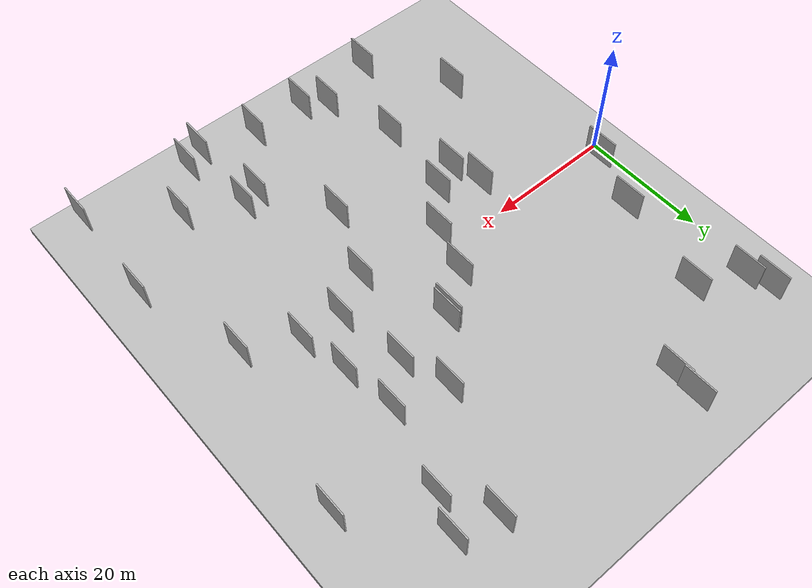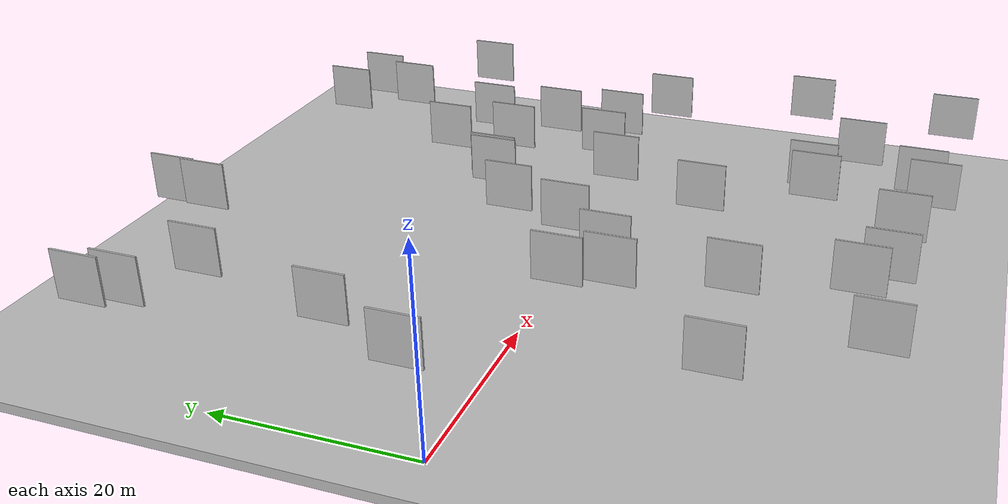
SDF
<?xml version="1.0" encoding="utf-8"?>

<sdf version="1.6">

   <world name="default">

      <gui fullscreen="0">

         <camera name="user_camera">

            <pose>-15 0 4.57585 0 0 0</pose>

            <view_controller>orbit</view_controller>

         </camera>

      </gui>

      <scene>

         <sky>

           <clouds>

             <speed>12</speed>

           </clouds>

         </sky>

         <ambient>0.4 0.4 0.4 1</ambient>

         <background>0.7 0.7 0.7 1</background>

         <shadows>1</shadows>

      </scene>

      <gravity>0 0 -9.8066</gravity>

      <magnetic_field>6e-06 2.3e-05 -4.2e-05</magnetic_field>

      <physics default="0" name="default_physics" type="ode">

         <ode>

            <solver>

               <type>quick</type>

               <iters>10</iters>

               <sor>1.0</sor>

               <use_dynamic_moi_rescaling>0</use_dynamic_moi_rescaling>

            </solver>

            <constraints>

               <cfm>0</cfm>

               <erp>0.2</erp>

               <contact_max_correcting_vel>100</contact_max_correcting_vel>

               <contact_surface_layer>0.001</contact_surface_layer>

            </constraints>

         </ode>

         <max_step_size>0.004</max_step_size>

         <real_time_factor>1</real_time_factor>

         <real_time_update_rate>250</real_time_update_rate>

      </physics>

      <light name="sun" type="directional">

         <cast_shadows>1</cast_shadows>

         <pose>0 0 10 0 0 0</pose>

         <diffuse>0.8 0.8 0.8 1</diffuse>

         <specular>0.2 0.2 0.2 1</specular>

         <attenuation>

            <range>1000</range>

            <constant>0.9</constant>

            <linear>0.01</linear>

            <quadratic>0.001</quadratic>

         </attenuation>

         <direction>-0.5 0.1 -0.9</direction>

      </light>

      <include>

         <name>ground_plane_1</name>

         <uri>model://HANNAS_ground_plane</uri>

         <pose>0 0 0  0 0 0</pose>

      </include>

      <include>

         <name>ground_plane_2</name>

         <uri>model://HANNAS_ground_plane</uri>

         <pose>100 0 0  0 0 0</pose>

      </include>

      <model name="HANNAS_wall_1">

         <static>1</static>

         <pose frame="">57.5017 1.6066 5.0 0.000000 0.000000 1.570796</pose>

         <link name="link">

            <pose frame="">0 0 2.50 0 0 0</pose>

            <collision name="collision">

               <geometry>

                  <box>

                     <size>5.00 0.2 5.00</size>

                  </box>

               </geometry>

               <max_contacts>10</max_contacts>

               <surface>

                  <contact>

                     <ode/>

                  </contact>

                  <bounce/>

                  <friction>

                     <torsional>

                        <ode/>

                     </torsional>

                     <ode/>

                  </friction>

               </surface>

            </collision>

            <visual name="visual">

               <cast_shadows>0</cast_shadows>

               <geometry>

                  <box>

                     <size>5.00 0.2 5.00</size>

                  </box>

               </geometry>

               <material>

                  <script>

                     <uri>model://HANNAS_wall/materials/scripts</uri>

                     <uri>model://HANNAS_wall/materials/textures</uri>

                     <name>vrc/HANNAS_wall</name>

                  </script>

               </material>

            </visual>

            <self_collide>0</self_collide>

            <enable_wind>0</enable_wind>

            <kinematic>0</kinematic>

         </link>

      </model>

      <model name="HANNAS_wall_2">

         <static>1</static>

         <pose frame="">56.0781 8.6717 5.0 0.000000 0.000000 1.570796</pose>

         <link name="link">

            <pose frame="">0 0 2.50 0 0 0</pose>

            <collision name="collision">

               <geometry>

                  <box>

                     <size>5.00 0.2 5.00</size>

                  </box>

               </geometry>

               <max_contacts>10</max_contacts>

               <surface>

                  <contact>

                     <ode/>

                  </contact>

                  <bounce/>

                  <friction>

                     <torsional>

                        <ode/>

                     </torsional>

                     <ode/>

                  </friction>

               </surface>

            </collision>

            <visual name="visual">

               <cast_shadows>0</cast_shadows>

               <geometry>

                  <box>

                     <size>5.00 0.2 5.00</size>

                  </box>

               </geometry>

               <material>

                  <script>

                     <uri>model://HANNAS_wall/materials/scripts</uri>

                     <uri>model://HANNAS_wall/materials/textures</uri>

                     <name>vrc/HANNAS_wall</name>

                  </script>

               </material>

            </visual>

            <self_collide>0</self_collide>

            <enable_wind>0</enable_wind>

            <kinematic>0</kinematic>

         </link>

      </model>

      <model name="HANNAS_wall_3">

         <static>1</static>

         <pose frame="">54.3988 35.3021 5.0 0.000000 0.000000 1.570796</pose>

         <link name="link">

            <pose frame="">0 0 2.50 0 0 0</pose>

            <collision name="collision">

               <geometry>

                  <box>

                     <size>5.00 0.2 5.00</size>

                  </box>

               </geometry>

               <max_contacts>10</max_contacts>

               <surface>

                  <contact>

                     <ode/>

                  </contact>

                  <bounce/>

                  <friction>

                     <torsional>

                        <ode/>

                     </torsional>

                     <ode/>

                  </friction>

               </surface>

            </collision>

            <visual name="visual">

               <cast_shadows>0</cast_shadows>

               <geometry>

                  <box>

                     <size>5.00 0.2 5.00</size>

                  </box>

               </geometry>

               <material>

                  <script>

                     <uri>model://HANNAS_wall/materials/scripts</uri>

                     <uri>model://HANNAS_wall/materials/textures</uri>

                     <name>vrc/HANNAS_wall</name>

                  </script>

               </material>

            </visual>

            <self_collide>0</self_collide>

            <enable_wind>0</enable_wind>

            <kinematic>0</kinematic>

         </link>

      </model>

      <model name="HANNAS_wall_4">

         <static>1</static>

         <pose frame="">47.4897 18.8995 5.0 0.000000 0.000000 1.570796</pose>

         <link name="link">

            <pose frame="">0 0 2.50 0 0 0</pose>

            <collision name="collision">

               <geometry>

                  <box>

                     <size>5.00 0.2 5.00</size>

                  </box>

               </geometry>

               <max_contacts>10</max_contacts>

               <surface>

                  <contact>

                     <ode/>

                  </contact>

                  <bounce/>

                  <friction>

                     <torsional>

                        <ode/>

                     </torsional>

                     <ode/>

                  </friction>

               </surface>

            </collision>

            <visual name="visual">

               <cast_shadows>0</cast_shadows>

               <geometry>

                  <box>

                     <size>5.00 0.2 5.00</size>

                  </box>

               </geometry>

               <material>

                  <script>

                     <uri>model://HANNAS_wall/materials/scripts</uri>

                     <uri>model://HANNAS_wall/materials/textures</uri>

                     <name>vrc/HANNAS_wall</name>

                  </script>

               </material>

            </visual>

            <self_collide>0</self_collide>

            <enable_wind>0</enable_wind>

            <kinematic>0</kinematic>

         </link>

      </model>

      <model name="HANNAS_wall_5">

         <static>1</static>

         <pose frame="">19.8289 -32.2792 5.0 0.000000 0.000000 1.570796</pose>

         <link name="link">

            <pose frame="">0 0 2.50 0 0 0</pose>

            <collision name="collision">

               <geometry>

                  <box>

                     <size>5.00 0.2 5.00</size>

                  </box>

               </geometry>

               <max_contacts>10</max_contacts>

               <surface>

                  <contact>

                     <ode/>

                  </contact>

                  <bounce/>

                  <friction>

                     <torsional>

                        <ode/>

                     </torsional>

                     <ode/>

                  </friction>

               </surface>

            </collision>

            <visual name="visual">

               <cast_shadows>0</cast_shadows>

               <geometry>

                  <box>

                     <size>5.00 0.2 5.00</size>

                  </box>

               </geometry>

               <material>

                  <script>

                     <uri>model://HANNAS_wall/materials/scripts</uri>

                     <uri>model://HANNAS_wall/materials/textures</uri>

                     <name>vrc/HANNAS_wall</name>

                  </script>

               </material>

            </visual>

            <self_collide>0</self_collide>

            <enable_wind>0</enable_wind>

            <kinematic>0</kinematic>

         </link>

      </model>

      <model name="HANNAS_wall_6">

         <static>1</static>

         <pose frame="">54.9334 16.5593 5.0 0.000000 0.000000 1.570796</pose>

         <link name="link">

            <pose frame="">0 0 2.50 0 0 0</pose>

            <collision name="collision">

               <geometry>

                  <box>

                     <size>5.00 0.2 5.00</size>

                  </box>

               </geometry>

               <max_contacts>10</max_contacts>

               <surface>

                  <contact>

                     <ode/>

                  </contact>

                  <bounce/>

                  <friction>

                     <torsional>

                        <ode/>

                     </torsional>

                     <ode/>

                  </friction>

               </surface>

            </collision>

            <visual name="visual">

               <cast_shadows>0</cast_shadows>

               <geometry>

                  <box>

                     <size>5.00 0.2 5.00</size>

                  </box>

               </geometry>

               <material>

                  <script>

                     <uri>model://HANNAS_wall/materials/scripts</uri>

                     <uri>model://HANNAS_wall/materials/textures</uri>

                     <name>vrc/HANNAS_wall</name>

                  </script>

               </material>

            </visual>

            <self_collide>0</self_collide>

            <enable_wind>0</enable_wind>

            <kinematic>0</kinematic>

         </link>

      </model>

      <model name="HANNAS_wall_7">

         <static>1</static>

         <pose frame="">50.0308 -21.8087 5.0 0.000000 0.000000 1.570796</pose>

         <link name="link">

            <pose frame="">0 0 2.50 0 0 0</pose>

            <collision name="collision">

               <geometry>

                  <box>

                     <size>5.00 0.2 5.00</size>

                  </box>

               </geometry>

               <max_contacts>10</max_contacts>

               <surface>

                  <contact>

                     <ode/>

                  </contact>

                  <bounce/>

                  <friction>

                     <torsional>

                        <ode/>

                     </torsional>

                     <ode/>

                  </friction>

               </surface>

            </collision>

            <visual name="visual">

               <cast_shadows>0</cast_shadows>

               <geometry>

                  <box>

                     <size>5.00 0.2 5.00</size>

                  </box>

               </geometry>

               <material>

                  <script>

                     <uri>model://HANNAS_wall/materials/scripts</uri>

                     <uri>model://HANNAS_wall/materials/textures</uri>

                     <name>vrc/HANNAS_wall</name>

                  </script>

               </material>

            </visual>

            <self_collide>0</self_collide>

            <enable_wind>0</enable_wind>

            <kinematic>0</kinematic>

         </link>

      </model>

      <model name="HANNAS_wall_8">

         <static>1</static>

         <pose frame="">64.5347 -2.5638 5.0 0.000000 0.000000 1.570796</pose>

         <link name="link">

            <pose frame="">0 0 2.50 0 0 0</pose>

            <collision name="collision">

               <geometry>

                  <box>

                     <size>5.00 0.2 5.00</size>

                  </box>

               </geometry>

               <max_contacts>10</max_contacts>

               <surface>

                  <contact>

                     <ode/>

                  </contact>

                  <bounce/>

                  <friction>

                     <torsional>

                        <ode/>

                     </torsional>

                     <ode/>

                  </friction>

               </surface>

            </collision>

            <visual name="visual">

               <cast_shadows>0</cast_shadows>

               <geometry>

                  <box>

                     <size>5.00 0.2 5.00</size>

                  </box>

               </geometry>

               <material>

                  <script>

                     <uri>model://HANNAS_wall/materials/scripts</uri>

                     <uri>model://HANNAS_wall/materials/textures</uri>

                     <name>vrc/HANNAS_wall</name>

                  </script>

               </material>

            </visual>

            <self_collide>0</self_collide>

            <enable_wind>0</enable_wind>

            <kinematic>0</kinematic>

         </link>

      </model>

      <model name="HANNAS_wall_9">

         <static>1</static>

         <pose frame="">40.8226 10.9444 5.0 0.000000 0.000000 1.570796</pose>

         <link name="link">

            <pose frame="">0 0 2.50 0 0 0</pose>

            <collision name="collision">

               <geometry>

                  <box>

                     <size>5.00 0.2 5.00</size>

                  </box>

               </geometry>

               <max_contacts>10</max_contacts>

               <surface>

                  <contact>

                     <ode/>

                  </contact>

                  <bounce/>

                  <friction>

                     <torsional>

                        <ode/>

                     </torsional>

                     <ode/>

                  </friction>

               </surface>

            </collision>

            <visual name="visual">

               <cast_shadows>0</cast_shadows>

               <geometry>

                  <box>

                     <size>5.00 0.2 5.00</size>

                  </box>

               </geometry>

               <material>

                  <script>

                     <uri>model://HANNAS_wall/materials/scripts</uri>

                     <uri>model://HANNAS_wall/materials/textures</uri>

                     <name>vrc/HANNAS_wall</name>

                  </script>

               </material>

            </visual>

            <self_collide>0</self_collide>

            <enable_wind>0</enable_wind>

            <kinematic>0</kinematic>

         </link>

      </model>

      <model name="HANNAS_wall_10">

         <static>1</static>

         <pose frame="">49.0571 -34.2443 5.0 0.000000 0.000000 1.570796</pose>

         <link name="link">

            <pose frame="">0 0 2.50 0 0 0</pose>

            <collision name="collision">

               <geometry>

                  <box>

                     <size>5.00 0.2 5.00</size>

                  </box>

               </geometry>

               <max_contacts>10</max_contacts>

               <surface>

                  <contact>

                     <ode/>

                  </contact>

                  <bounce/>

                  <friction>

                     <torsional>

                        <ode/>

                     </torsional>

                     <ode/>

                  </friction>

               </surface>

            </collision>

            <visual name="visual">

               <cast_shadows>0</cast_shadows>

               <geometry>

                  <box>

                     <size>5.00 0.2 5.00</size>

                  </box>

               </geometry>

               <material>

                  <script>

                     <uri>model://HANNAS_wall/materials/scripts</uri>

                     <uri>model://HANNAS_wall/materials/textures</uri>

                     <name>vrc/HANNAS_wall</name>

                  </script>

               </material>

            </visual>

            <self_collide>0</self_collide>

            <enable_wind>0</enable_wind>

            <kinematic>0</kinematic>

         </link>

      </model>

      <model name="HANNAS_wall_11">

         <static>1</static>

         <pose frame="">68.6575 -35.0618 5.0 0.000000 0.000000 1.570796</pose>

         <link name="link">

            <pose frame="">0 0 2.50 0 0 0</pose>

            <collision name="collision">

               <geometry>

                  <box>

                     <size>5.00 0.2 5.00</size>

                  </box>

               </geometry>

               <max_contacts>10</max_contacts>

               <surface>

                  <contact>

                     <ode/>

                  </contact>

                  <bounce/>

                  <friction>

                     <torsional>

                        <ode/>

                     </torsional>

                     <ode/>

                  </friction>

               </surface>

            </collision>

            <visual name="visual">

               <cast_shadows>0</cast_shadows>

               <geometry>

                  <box>

                     <size>5.00 0.2 5.00</size>

                  </box>

               </geometry>

               <material>

                  <script>

                     <uri>model://HANNAS_wall/materials/scripts</uri>

                     <uri>model://HANNAS_wall/materials/textures</uri>

                     <name>vrc/HANNAS_wall</name>

                  </script>

               </material>

            </visual>

            <self_collide>0</self_collide>

            <enable_wind>0</enable_wind>

            <kinematic>0</kinematic>

         </link>

      </model>

      <model name="HANNAS_wall_12">

         <static>1</static>

         <pose frame="">21.8648 -3.1618 5.0 0.000000 0.000000 1.570796</pose>

         <link name="link">

            <pose frame="">0 0 2.50 0 0 0</pose>

            <collision name="collision">

               <geometry>

                  <box>

                     <size>5.00 0.2 5.00</size>

                  </box>

               </geometry>

               <max_contacts>10</max_contacts>

               <surface>

                  <contact>

                     <ode/>

                  </contact>

                  <bounce/>

                  <friction>

                     <torsional>

                        <ode/>

                     </torsional>

                     <ode/>

                  </friction>

               </surface>

            </collision>

            <visual name="visual">

               <cast_shadows>0</cast_shadows>

               <geometry>

                  <box>

                     <size>5.00 0.2 5.00</size>

                  </box>

               </geometry>

               <material>

                  <script>

                     <uri>model://HANNAS_wall/materials/scripts</uri>

                     <uri>model://HANNAS_wall/materials/textures</uri>

                     <name>vrc/HANNAS_wall</name>

                  </script>

               </material>

            </visual>

            <self_collide>0</self_collide>

            <enable_wind>0</enable_wind>

            <kinematic>0</kinematic>

         </link>

      </model>

      <model name="HANNAS_wall_13">

         <static>1</static>

         <pose frame="">57.7972 -25.9357 5.0 0.000000 0.000000 1.570796</pose>

         <link name="link">

            <pose frame="">0 0 2.50 0 0 0</pose>

            <collision name="collision">

               <geometry>

                  <box>

                     <size>5.00 0.2 5.00</size>

                  </box>

               </geometry>

               <max_contacts>10</max_contacts>

               <surface>

                  <contact>

                     <ode/>

                  </contact>

                  <bounce/>

                  <friction>

                     <torsional>

                        <ode/>

                     </torsional>

                     <ode/>

                  </friction>

               </surface>

            </collision>

            <visual name="visual">

               <cast_shadows>0</cast_shadows>

               <geometry>

                  <box>

                     <size>5.00 0.2 5.00</size>

                  </box>

               </geometry>

               <material>

                  <script>

                     <uri>model://HANNAS_wall/materials/scripts</uri>

                     <uri>model://HANNAS_wall/materials/textures</uri>

                     <name>vrc/HANNAS_wall</name>

                  </script>

               </material>

            </visual>

            <self_collide>0</self_collide>

            <enable_wind>0</enable_wind>

            <kinematic>0</kinematic>

         </link>

      </model>

      <model name="HANNAS_wall_14">

         <static>1</static>

         <pose frame="">4.7463 35.4220 5.0 0.000000 0.000000 1.570796</pose>

         <link name="link">

            <pose frame="">0 0 2.50 0 0 0</pose>

            <collision name="collision">

               <geometry>

                  <box>

                     <size>5.00 0.2 5.00</size>

                  </box>

               </geometry>

               <max_contacts>10</max_contacts>

               <surface>

                  <contact>

                     <ode/>

                  </contact>

                  <bounce/>

                  <friction>

                     <torsional>

                        <ode/>

                     </torsional>

                     <ode/>

                  </friction>

               </surface>

            </collision>

            <visual name="visual">

               <cast_shadows>0</cast_shadows>

               <geometry>

                  <box>

                     <size>5.00 0.2 5.00</size>

                  </box>

               </geometry>

               <material>

                  <script>

                     <uri>model://HANNAS_wall/materials/scripts</uri>

                     <uri>model://HANNAS_wall/materials/textures</uri>

                     <name>vrc/HANNAS_wall</name>

                  </script>

               </material>

            </visual>

            <self_collide>0</self_collide>

            <enable_wind>0</enable_wind>

            <kinematic>0</kinematic>

         </link>

      </model>

      <model name="HANNAS_wall_15">

         <static>1</static>

         <pose frame="">29.0141 -29.4306 5.0 0.000000 0.000000 1.570796</pose>

         <link name="link">

            <pose frame="">0 0 2.50 0 0 0</pose>

            <collision name="collision">

               <geometry>

                  <box>

                     <size>5.00 0.2 5.00</size>

                  </box>

               </geometry>

               <max_contacts>10</max_contacts>

               <surface>

                  <contact>

                     <ode/>

                  </contact>

                  <bounce/>

                  <friction>

                     <torsional>

                        <ode/>

                     </torsional>

                     <ode/>

                  </friction>

               </surface>

            </collision>

            <visual name="visual">

               <cast_shadows>0</cast_shadows>

               <geometry>

                  <box>

                     <size>5.00 0.2 5.00</size>

                  </box>

               </geometry>

               <material>

                  <script>

                     <uri>model://HANNAS_wall/materials/scripts</uri>

                     <uri>model://HANNAS_wall/materials/textures</uri>

                     <name>vrc/HANNAS_wall</name>

                  </script>

               </material>

            </visual>

            <self_collide>0</self_collide>

            <enable_wind>0</enable_wind>

            <kinematic>0</kinematic>

         </link>

      </model>

      <model name="HANNAS_wall_16">

         <static>1</static>

         <pose frame="">58.2957 28.6387 5.0 0.000000 0.000000 1.570796</pose>

         <link name="link">

            <pose frame="">0 0 2.50 0 0 0</pose>

            <collision name="collision">

               <geometry>

                  <box>

                     <size>5.00 0.2 5.00</size>

                  </box>

               </geometry>

               <max_contacts>10</max_contacts>

               <surface>

                  <contact>

                     <ode/>

                  </contact>

                  <bounce/>

                  <friction>

                     <torsional>

                        <ode/>

                     </torsional>

                     <ode/>

                  </friction>

               </surface>

            </collision>

            <visual name="visual">

               <cast_shadows>0</cast_shadows>

               <geometry>

                  <box>

                     <size>5.00 0.2 5.00</size>

                  </box>

               </geometry>

               <material>

                  <script>

                     <uri>model://HANNAS_wall/materials/scripts</uri>

                     <uri>model://HANNAS_wall/materials/textures</uri>

                     <name>vrc/HANNAS_wall</name>

                  </script>

               </material>

            </visual>

            <self_collide>0</self_collide>

            <enable_wind>0</enable_wind>

            <kinematic>0</kinematic>

         </link>

      </model>

      <model name="HANNAS_wall_17">

         <static>1</static>

         <pose frame="">49.7387 12.1019 5.0 0.000000 0.000000 1.570796</pose>

         <link name="link">

            <pose frame="">0 0 2.50 0 0 0</pose>

            <collision name="collision">

               <geometry>

                  <box>

                     <size>5.00 0.2 5.00</size>

                  </box>

               </geometry>

               <max_contacts>10</max_contacts>

               <surface>

                  <contact>

                     <ode/>

                  </contact>

                  <bounce/>

                  <friction>

                     <torsional>

                        <ode/>

                     </torsional>

                     <ode/>

                  </friction>

               </surface>

            </collision>

            <visual name="visual">

               <cast_shadows>0</cast_shadows>

               <geometry>

                  <box>

                     <size>5.00 0.2 5.00</size>

                  </box>

               </geometry>

               <material>

                  <script>

                     <uri>model://HANNAS_wall/materials/scripts</uri>

                     <uri>model://HANNAS_wall/materials/textures</uri>

                     <name>vrc/HANNAS_wall</name>

                  </script>

               </material>

            </visual>

            <self_collide>0</self_collide>

            <enable_wind>0</enable_wind>

            <kinematic>0</kinematic>

         </link>

      </model>

      <model name="HANNAS_wall_18">

         <static>1</static>

         <pose frame="">32.2640 -0.2797 5.0 0.000000 0.000000 1.570796</pose>

         <link name="link">

            <pose frame="">0 0 2.50 0 0 0</pose>

            <collision name="collision">

               <geometry>

                  <box>

                     <size>5.00 0.2 5.00</size>

                  </box>

               </geometry>

               <max_contacts>10</max_contacts>

               <surface>

                  <contact>

                     <ode/>

                  </contact>

                  <bounce/>

                  <friction>

                     <torsional>

                        <ode/>

                     </torsional>

                     <ode/>

                  </friction>

               </surface>

            </collision>

            <visual name="visual">

               <cast_shadows>0</cast_shadows>

               <geometry>

                  <box>

                     <size>5.00 0.2 5.00</size>

                  </box>

               </geometry>

               <material>

                  <script>

                     <uri>model://HANNAS_wall/materials/scripts</uri>

                     <uri>model://HANNAS_wall/materials/textures</uri>

                     <name>vrc/HANNAS_wall</name>

                  </script>

               </material>

            </visual>

            <self_collide>0</self_collide>

            <enable_wind>0</enable_wind>

            <kinematic>0</kinematic>

         </link>

      </model>

      <model name="HANNAS_wall_19">

         <static>1</static>

         <pose frame="">34.6848 6.6577 5.0 0.000000 0.000000 1.570796</pose>

         <link name="link">

            <pose frame="">0 0 2.50 0 0 0</pose>

            <collision name="collision">

               <geometry>

                  <box>

                     <size>5.00 0.2 5.00</size>

                  </box>

               </geometry>

               <max_contacts>10</max_contacts>

               <surface>

                  <contact>

                     <ode/>

                  </contact>

                  <bounce/>

                  <friction>

                     <torsional>

                        <ode/>

                     </torsional>

                     <ode/>

                  </friction>

               </surface>

            </collision>

            <visual name="visual">

               <cast_shadows>0</cast_shadows>

               <geometry>

                  <box>

                     <size>5.00 0.2 5.00</size>

                  </box>

               </geometry>

               <material>

                  <script>

                     <uri>model://HANNAS_wall/materials/scripts</uri>

                     <uri>model://HANNAS_wall/materials/textures</uri>

                     <name>vrc/HANNAS_wall</name>

                  </script>

               </material>

            </visual>

            <self_collide>0</self_collide>

            <enable_wind>0</enable_wind>

            <kinematic>0</kinematic>

         </link>

      </model>

      <model name="HANNAS_wall_20">

         <static>1</static>

         <pose frame="">51.3331 1.8923 5.0 0.000000 0.000000 1.570796</pose>

         <link name="link">

            <pose frame="">0 0 2.50 0 0 0</pose>

            <collision name="collision">

               <geometry>

                  <box>

                     <size>5.00 0.2 5.00</size>

                  </box>

               </geometry>

               <max_contacts>10</max_contacts>

               <surface>

                  <contact>

                     <ode/>

                  </contact>

                  <bounce/>

                  <friction>

                     <torsional>

                        <ode/>

                     </torsional>

                     <ode/>

                  </friction>

               </surface>

            </collision>

            <visual name="visual">

               <cast_shadows>0</cast_shadows>

               <geometry>

                  <box>

                     <size>5.00 0.2 5.00</size>

                  </box>

               </geometry>

               <material>

                  <script>

                     <uri>model://HANNAS_wall/materials/scripts</uri>

                     <uri>model://HANNAS_wall/materials/textures</uri>

                     <name>vrc/HANNAS_wall</name>

                  </script>

               </material>

            </visual>

            <self_collide>0</self_collide>

            <enable_wind>0</enable_wind>

            <kinematic>0</kinematic>

         </link>

      </model>

      <model name="HANNAS_wall_21">

         <static>1</static>

         <pose frame="">23.2405 -7.7976 5.0 0.000000 0.000000 1.570796</pose>

         <link name="link">

            <pose frame="">0 0 2.50 0 0 0</pose>

            <collision name="collision">

               <geometry>

                  <box>

                     <size>5.00 0.2 5.00</size>

                  </box>

               </geometry>

               <max_contacts>10</max_contacts>

               <surface>

                  <contact>

                     <ode/>

                  </contact>

                  <bounce/>

                  <friction>

                     <torsional>

                        <ode/>

                     </torsional>

                     <ode/>

                  </friction>

               </surface>

            </collision>

            <visual name="visual">

               <cast_shadows>0</cast_shadows>

               <geometry>

                  <box>

                     <size>5.00 0.2 5.00</size>

                  </box>

               </geometry>

               <material>

                  <script>

                     <uri>model://HANNAS_wall/materials/scripts</uri>

                     <uri>model://HANNAS_wall/materials/textures</uri>

                     <name>vrc/HANNAS_wall</name>

                  </script>

               </material>

            </visual>

            <self_collide>0</self_collide>

            <enable_wind>0</enable_wind>

            <kinematic>0</kinematic>

         </link>

      </model>

      <model name="HANNAS_wall_22">

         <static>1</static>

         <pose frame="">25.7096 -18.5956 5.0 0.000000 0.000000 1.570796</pose>

         <link name="link">

            <pose frame="">0 0 2.50 0 0 0</pose>

            <collision name="collision">

               <geometry>

                  <box>

                     <size>5.00 0.2 5.00</size>

                  </box>

               </geometry>

               <max_contacts>10</max_contacts>

               <surface>

                  <contact>

                     <ode/>

                  </contact>

                  <bounce/>

                  <friction>

                     <torsional>

                        <ode/>

                     </torsional>

                     <ode/>

                  </friction>

               </surface>

            </collision>

            <visual name="visual">

               <cast_shadows>0</cast_shadows>

               <geometry>

                  <box>

                     <size>5.00 0.2 5.00</size>

                  </box>

               </geometry>

               <material>

                  <script>

                     <uri>model://HANNAS_wall/materials/scripts</uri>

                     <uri>model://HANNAS_wall/materials/textures</uri>

                     <name>vrc/HANNAS_wall</name>

                  </script>

               </material>

            </visual>

            <self_collide>0</self_collide>

            <enable_wind>0</enable_wind>

            <kinematic>0</kinematic>

         </link>

      </model>

      <model name="HANNAS_wall_23">

         <static>1</static>

         <pose frame="">32.4021 -31.7320 5.0 0.000000 0.000000 1.570796</pose>

         <link name="link">

            <pose frame="">0 0 2.50 0 0 0</pose>

            <collision name="collision">

               <geometry>

                  <box>

                     <size>5.00 0.2 5.00</size>

                  </box>

               </geometry>

               <max_contacts>10</max_contacts>

               <surface>

                  <contact>

                     <ode/>

                  </contact>

                  <bounce/>

                  <friction>

                     <torsional>

                        <ode/>

                     </torsional>

                     <ode/>

                  </friction>

               </surface>

            </collision>

            <visual name="visual">

               <cast_shadows>0</cast_shadows>

               <geometry>

                  <box>

                     <size>5.00 0.2 5.00</size>

                  </box>

               </geometry>

               <material>

                  <script>

                     <uri>model://HANNAS_wall/materials/scripts</uri>

                     <uri>model://HANNAS_wall/materials/textures</uri>

                     <name>vrc/HANNAS_wall</name>

                  </script>

               </material>

            </visual>

            <self_collide>0</self_collide>

            <enable_wind>0</enable_wind>

            <kinematic>0</kinematic>

         </link>

      </model>

      <model name="HANNAS_wall_24">

         <static>1</static>

         <pose frame="">12.6926 28.8400 5.0 0.000000 0.000000 1.570796</pose>

         <link name="link">

            <pose frame="">0 0 2.50 0 0 0</pose>

            <collision name="collision">

               <geometry>

                  <box>

                     <size>5.00 0.2 5.00</size>

                  </box>

               </geometry>

               <max_contacts>10</max_contacts>

               <surface>

                  <contact>

                     <ode/>

                  </contact>

                  <bounce/>

                  <friction>

                     <torsional>

                        <ode/>

                     </torsional>

                     <ode/>

                  </friction>

               </surface>

            </collision>

            <visual name="visual">

               <cast_shadows>0</cast_shadows>

               <geometry>

                  <box>

                     <size>5.00 0.2 5.00</size>

                  </box>

               </geometry>

               <material>

                  <script>

                     <uri>model://HANNAS_wall/materials/scripts</uri>

                     <uri>model://HANNAS_wall/materials/textures</uri>

                     <name>vrc/HANNAS_wall</name>

                  </script>

               </material>

            </visual>

            <self_collide>0</self_collide>

            <enable_wind>0</enable_wind>

            <kinematic>0</kinematic>

         </link>

      </model>

      <model name="HANNAS_wall_25">

         <static>1</static>

         <pose frame="">40.8374 -31.9557 5.0 0.000000 0.000000 1.570796</pose>

         <link name="link">

            <pose frame="">0 0 2.50 0 0 0</pose>

            <collision name="collision">

               <geometry>

                  <box>

                     <size>5.00 0.2 5.00</size>

                  </box>

               </geometry>

               <max_contacts>10</max_contacts>

               <surface>

                  <contact>

                     <ode/>

                  </contact>

                  <bounce/>

                  <friction>

                     <torsional>

                        <ode/>

                     </torsional>

                     <ode/>

                  </friction>

               </surface>

            </collision>

            <visual name="visual">

               <cast_shadows>0</cast_shadows>

               <geometry>

                  <box>

                     <size>5.00 0.2 5.00</size>

                  </box>

               </geometry>

               <material>

                  <script>

                     <uri>model://HANNAS_wall/materials/scripts</uri>

                     <uri>model://HANNAS_wall/materials/textures</uri>

                     <name>vrc/HANNAS_wall</name>

                  </script>

               </material>

            </visual>

            <self_collide>0</self_collide>

            <enable_wind>0</enable_wind>

            <kinematic>0</kinematic>

         </link>

      </model>

      <model name="HANNAS_wall_26">

         <static>1</static>

         <pose frame="">45.2582 -1.4770 5.0 0.000000 0.000000 1.570796</pose>

         <link name="link">

            <pose frame="">0 0 2.50 0 0 0</pose>

            <collision name="collision">

               <geometry>

                  <box>

                     <size>5.00 0.2 5.00</size>

                  </box>

               </geometry>

               <max_contacts>10</max_contacts>

               <surface>

                  <contact>

                     <ode/>

                  </contact>

                  <bounce/>

                  <friction>

                     <torsional>

                        <ode/>

                     </torsional>

                     <ode/>

                  </friction>

               </surface>

            </collision>

            <visual name="visual">

               <cast_shadows>0</cast_shadows>

               <geometry>

                  <box>

                     <size>5.00 0.2 5.00</size>

                  </box>

               </geometry>

               <material>

                  <script>

                     <uri>model://HANNAS_wall/materials/scripts</uri>

                     <uri>model://HANNAS_wall/materials/textures</uri>

                     <name>vrc/HANNAS_wall</name>

                  </script>

               </material>

            </visual>

            <self_collide>0</self_collide>

            <enable_wind>0</enable_wind>

            <kinematic>0</kinematic>

         </link>

      </model>

      <model name="HANNAS_wall_27">

         <static>1</static>

         <pose frame="">60.2862 33.7061 5.0 0.000000 0.000000 1.570796</pose>

         <link name="link">

            <pose frame="">0 0 2.50 0 0 0</pose>

            <collision name="collision">

               <geometry>

                  <box>

                     <size>5.00 0.2 5.00</size>

                  </box>

               </geometry>

               <max_contacts>10</max_contacts>

               <surface>

                  <contact>

                     <ode/>

                  </contact>

                  <bounce/>

                  <friction>

                     <torsional>

                        <ode/>

                     </torsional>

                     <ode/>

                  </friction>

               </surface>

            </collision>

            <visual name="visual">

               <cast_shadows>0</cast_shadows>

               <geometry>

                  <box>

                     <size>5.00 0.2 5.00</size>

                  </box>

               </geometry>

               <material>

                  <script>

                     <uri>model://HANNAS_wall/materials/scripts</uri>

                     <uri>model://HANNAS_wall/materials/textures</uri>

                     <name>vrc/HANNAS_wall</name>

                  </script>

               </material>

            </visual>

            <self_collide>0</self_collide>

            <enable_wind>0</enable_wind>

            <kinematic>0</kinematic>

         </link>

      </model>

      <model name="HANNAS_wall_28">

         <static>1</static>

         <pose frame="">24.8145 36.2063 5.0 0.000000 0.000000 1.570796</pose>

         <link name="link">

            <pose frame="">0 0 2.50 0 0 0</pose>

            <collision name="collision">

               <geometry>

                  <box>

                     <size>5.00 0.2 5.00</size>

                  </box>

               </geometry>

               <max_contacts>10</max_contacts>

               <surface>

                  <contact>

                     <ode/>

                  </contact>

                  <bounce/>

                  <friction>

                     <torsional>

                        <ode/>

                     </torsional>

                     <ode/>

                  </friction>

               </surface>

            </collision>

            <visual name="visual">

               <cast_shadows>0</cast_shadows>

               <geometry>

                  <box>

                     <size>5.00 0.2 5.00</size>

                  </box>

               </geometry>

               <material>

                  <script>

                     <uri>model://HANNAS_wall/materials/scripts</uri>

                     <uri>model://HANNAS_wall/materials/textures</uri>

                     <name>vrc/HANNAS_wall</name>

                  </script>

               </material>

            </visual>

            <self_collide>0</self_collide>

            <enable_wind>0</enable_wind>

            <kinematic>0</kinematic>

         </link>

      </model>

      <model name="HANNAS_wall_29">

         <static>1</static>

         <pose frame="">52.1399 -32.8068 5.0 0.000000 0.000000 1.570796</pose>

         <link name="link">

            <pose frame="">0 0 2.50 0 0 0</pose>

            <collision name="collision">

               <geometry>

                  <box>

                     <size>5.00 0.2 5.00</size>

                  </box>

               </geometry>

               <max_contacts>10</max_contacts>

               <surface>

                  <contact>

                     <ode/>

                  </contact>

                  <bounce/>

                  <friction>

                     <torsional>

                        <ode/>

                     </torsional>

                     <ode/>

                  </friction>

               </surface>

            </collision>

            <visual name="visual">

               <cast_shadows>0</cast_shadows>

               <geometry>

                  <box>

                     <size>5.00 0.2 5.00</size>

                  </box>

               </geometry>

               <material>

                  <script>

                     <uri>model://HANNAS_wall/materials/scripts</uri>

                     <uri>model://HANNAS_wall/materials/textures</uri>

                     <name>vrc/HANNAS_wall</name>

                  </script>

               </material>

            </visual>

            <self_collide>0</self_collide>

            <enable_wind>0</enable_wind>

            <kinematic>0</kinematic>

         </link>

      </model>

      <model name="HANNAS_wall_30">

         <static>1</static>

         <pose frame="">27.3456 -6.0226 5.0 0.000000 0.000000 1.570796</pose>

         <link name="link">

            <pose frame="">0 0 2.50 0 0 0</pose>

            <collision name="collision">

               <geometry>

                  <box>

                     <size>5.00 0.2 5.00</size>

                  </box>

               </geometry>

               <max_contacts>10</max_contacts>

               <surface>

                  <contact>

                     <ode/>

                  </contact>

                  <bounce/>

                  <friction>

                     <torsional>

                        <ode/>

                     </torsional>

                     <ode/>

                  </friction>

               </surface>

            </collision>

            <visual name="visual">

               <cast_shadows>0</cast_shadows>

               <geometry>

                  <box>

                     <size>5.00 0.2 5.00</size>

                  </box>

               </geometry>

               <material>

                  <script>

                     <uri>model://HANNAS_wall/materials/scripts</uri>

                     <uri>model://HANNAS_wall/materials/textures</uri>

                     <name>vrc/HANNAS_wall</name>

                  </script>

               </material>

            </visual>

            <self_collide>0</self_collide>

            <enable_wind>0</enable_wind>

            <kinematic>0</kinematic>

         </link>

      </model>

      <model name="HANNAS_wall_31">

         <static>1</static>

         <pose frame="">69.0464 22.4120 5.0 0.000000 0.000000 1.570796</pose>

         <link name="link">

            <pose frame="">0 0 2.50 0 0 0</pose>

            <collision name="collision">

               <geometry>

                  <box>

                     <size>5.00 0.2 5.00</size>

                  </box>

               </geometry>

               <max_contacts>10</max_contacts>

               <surface>

                  <contact>

                     <ode/>

                  </contact>

                  <bounce/>

                  <friction>

                     <torsional>

                        <ode/>

                     </torsional>

                     <ode/>

                  </friction>

               </surface>

            </collision>

            <visual name="visual">

               <cast_shadows>0</cast_shadows>

               <geometry>

                  <box>

                     <size>5.00 0.2 5.00</size>

                  </box>

               </geometry>

               <material>

                  <script>

                     <uri>model://HANNAS_wall/materials/scripts</uri>

                     <uri>model://HANNAS_wall/materials/textures</uri>

                     <name>vrc/HANNAS_wall</name>

                  </script>

               </material>

            </visual>

            <self_collide>0</self_collide>

            <enable_wind>0</enable_wind>

            <kinematic>0</kinematic>

         </link>

      </model>

      <model name="HANNAS_wall_32">

         <static>1</static>

         <pose frame="">40.2112 10.6199 5.0 0.000000 0.000000 1.570796</pose>

         <link name="link">

            <pose frame="">0 0 2.50 0 0 0</pose>

            <collision name="collision">

               <geometry>

                  <box>

                     <size>5.00 0.2 5.00</size>

                  </box>

               </geometry>

               <max_contacts>10</max_contacts>

               <surface>

                  <contact>

                     <ode/>

                  </contact>

                  <bounce/>

                  <friction>

                     <torsional>

                        <ode/>

                     </torsional>

                     <ode/>

                  </friction>

               </surface>

            </collision>

            <visual name="visual">

               <cast_shadows>0</cast_shadows>

               <geometry>

                  <box>

                     <size>5.00 0.2 5.00</size>

                  </box>

               </geometry>

               <material>

                  <script>

                     <uri>model://HANNAS_wall/materials/scripts</uri>

                     <uri>model://HANNAS_wall/materials/textures</uri>

                     <name>vrc/HANNAS_wall</name>

                  </script>

               </material>

            </visual>

            <self_collide>0</self_collide>

            <enable_wind>0</enable_wind>

            <kinematic>0</kinematic>

         </link>

      </model>

      <model name="HANNAS_wall_33">

         <static>1</static>

         <pose frame="">9.0679 13.6717 5.0 0.000000 0.000000 1.570796</pose>

         <link name="link">

            <pose frame="">0 0 2.50 0 0 0</pose>

            <collision name="collision">

               <geometry>

                  <box>

                     <size>5.00 0.2 5.00</size>

                  </box>

               </geometry>

               <max_contacts>10</max_contacts>

               <surface>

                  <contact>

                     <ode/>

                  </contact>

                  <bounce/>

                  <friction>

                     <torsional>

                        <ode/>

                     </torsional>

                     <ode/>

                  </friction>

               </surface>

            </collision>

            <visual name="visual">

               <cast_shadows>0</cast_shadows>

               <geometry>

                  <box>

                     <size>5.00 0.2 5.00</size>

                  </box>

               </geometry>

               <material>

                  <script>

                     <uri>model://HANNAS_wall/materials/scripts</uri>

                     <uri>model://HANNAS_wall/materials/textures</uri>

                     <name>vrc/HANNAS_wall</name>

                  </script>

               </material>

            </visual>

            <self_collide>0</self_collide>

            <enable_wind>0</enable_wind>

            <kinematic>0</kinematic>

         </link>

      </model>

      <model name="HANNAS_wall_34">

         <static>1</static>

         <pose frame="">5.0622 4.6306 5.0 0.000000 0.000000 1.570796</pose>

         <link name="link">

            <pose frame="">0 0 2.50 0 0 0</pose>

            <collision name="collision">

               <geometry>

                  <box>

                     <size>5.00 0.2 5.00</size>

                  </box>

               </geometry>

               <max_contacts>10</max_contacts>

               <surface>

                  <contact>

                     <ode/>

                  </contact>

                  <bounce/>

                  <friction>

                     <torsional>

                        <ode/>

                     </torsional>

                     <ode/>

                  </friction>

               </surface>

            </collision>

            <visual name="visual">

               <cast_shadows>0</cast_shadows>

               <geometry>

                  <box>

                     <size>5.00 0.2 5.00</size>

                  </box>

               </geometry>

               <material>

                  <script>

                     <uri>model://HANNAS_wall/materials/scripts</uri>

                     <uri>model://HANNAS_wall/materials/textures</uri>

                     <name>vrc/HANNAS_wall</name>

                  </script>

               </material>

            </visual>

            <self_collide>0</self_collide>

            <enable_wind>0</enable_wind>

            <kinematic>0</kinematic>

         </link>

      </model>

      <model name="HANNAS_wall_35">

         <static>1</static>

         <pose frame="">69.3849 -18.7714 5.0 0.000000 0.000000 1.570796</pose>

         <link name="link">

            <pose frame="">0 0 2.50 0 0 0</pose>

            <collision name="collision">

               <geometry>

                  <box>

                     <size>5.00 0.2 5.00</size>

                  </box>

               </geometry>

               <max_contacts>10</max_contacts>

               <surface>

                  <contact>

                     <ode/>

                  </contact>

                  <bounce/>

                  <friction>

                     <torsional>

                        <ode/>

                     </torsional>

                     <ode/>

                  </friction>

               </surface>

            </collision>

            <visual name="visual">

               <cast_shadows>0</cast_shadows>

               <geometry>

                  <box>

                     <size>5.00 0.2 5.00</size>

                  </box>

               </geometry>

               <material>

                  <script>

                     <uri>model://HANNAS_wall/materials/scripts</uri>

                     <uri>model://HANNAS_wall/materials/textures</uri>

                     <name>vrc/HANNAS_wall</name>

                  </script>

               </material>

            </visual>

            <self_collide>0</self_collide>

            <enable_wind>0</enable_wind>

            <kinematic>0</kinematic>

         </link>

      </model>

      <model name="HANNAS_wall_36">

         <static>1</static>

         <pose frame="">25.0225 39.8740 5.0 0.000000 0.000000 1.570796</pose>

         <link name="link">

            <pose frame="">0 0 2.50 0 0 0</pose>

            <collision name="collision">

               <geometry>

                  <box>

                     <size>5.00 0.2 5.00</size>

                  </box>

               </geometry>

               <max_contacts>10</max_contacts>

               <surface>

                  <contact>

                     <ode/>

                  </contact>

                  <bounce/>

                  <friction>

                     <torsional>

                        <ode/>

                     </torsional>

                     <ode/>

                  </friction>

               </surface>

            </collision>

            <visual name="visual">

               <cast_shadows>0</cast_shadows>

               <geometry>

                  <box>

                     <size>5.00 0.2 5.00</size>

                  </box>

               </geometry>

               <material>

                  <script>

                     <uri>model://HANNAS_wall/materials/scripts</uri>

                     <uri>model://HANNAS_wall/materials/textures</uri>

                     <name>vrc/HANNAS_wall</name>

                  </script>

               </material>

            </visual>

            <self_collide>0</self_collide>

            <enable_wind>0</enable_wind>

            <kinematic>0</kinematic>

         </link>

      </model>

      <model name="HANNAS_wall_37">

         <static>1</static>

         <pose frame="">47.3416 -22.4517 5.0 0.000000 0.000000 1.570796</pose>

         <link name="link">

            <pose frame="">0 0 2.50 0 0 0</pose>

            <collision name="collision">

               <geometry>

                  <box>

                     <size>5.00 0.2 5.00</size>

                  </box>

               </geometry>

               <max_contacts>10</max_contacts>

               <surface>

                  <contact>

                     <ode/>

                  </contact>

                  <bounce/>

                  <friction>

                     <torsional>

                        <ode/>

                     </torsional>

                     <ode/>

                  </friction>

               </surface>

            </collision>

            <visual name="visual">

               <cast_shadows>0</cast_shadows>

               <geometry>

                  <box>

                     <size>5.00 0.2 5.00</size>

                  </box>

               </geometry>

               <material>

                  <script>

                     <uri>model://HANNAS_wall/materials/scripts</uri>

                     <uri>model://HANNAS_wall/materials/textures</uri>

                     <name>vrc/HANNAS_wall</name>

                  </script>

               </material>

            </visual>

            <self_collide>0</self_collide>

            <enable_wind>0</enable_wind>

            <kinematic>0</kinematic>

         </link>

      </model>

      <model name="HANNAS_wall_38">

         <static>1</static>

         <pose frame="">41.0887 -11.8458 5.0 0.000000 0.000000 1.570796</pose>

         <link name="link">

            <pose frame="">0 0 2.50 0 0 0</pose>

            <collision name="collision">

               <geometry>

                  <box>

                     <size>5.00 0.2 5.00</size>

                  </box>

               </geometry>

               <max_contacts>10</max_contacts>

               <surface>

                  <contact>

                     <ode/>

                  </contact>

                  <bounce/>

                  <friction>

                     <torsional>

                        <ode/>

                     </torsional>

                     <ode/>

                  </friction>

               </surface>

            </collision>

            <visual name="visual">

               <cast_shadows>0</cast_shadows>

               <geometry>

                  <box>

                     <size>5.00 0.2 5.00</size>

                  </box>

               </geometry>

               <material>

                  <script>

                     <uri>model://HANNAS_wall/materials/scripts</uri>

                     <uri>model://HANNAS_wall/materials/textures</uri>

                     <name>vrc/HANNAS_wall</name>

                  </script>

               </material>

            </visual>

            <self_collide>0</self_collide>

            <enable_wind>0</enable_wind>

            <kinematic>0</kinematic>

         </link>

      </model>

      <model name="HANNAS_wall_39">

         <static>1</static>

         <pose frame="">5.9289 32.2216 5.0 0.000000 0.000000 1.570796</pose>

         <link name="link">

            <pose frame="">0 0 2.50 0 0 0</pose>

            <collision name="collision">

               <geometry>

                  <box>

                     <size>5.00 0.2 5.00</size>

                  </box>

               </geometry>

               <max_contacts>10</max_contacts>

               <surface>

                  <contact>

                     <ode/>

                  </contact>

                  <bounce/>

                  <friction>

                     <torsional>

                        <ode/>

                     </torsional>

                     <ode/>

                  </friction>

               </surface>

            </collision>

            <visual name="visual">

               <cast_shadows>0</cast_shadows>

               <geometry>

                  <box>

                     <size>5.00 0.2 5.00</size>

                  </box>

               </geometry>

               <material>

                  <script>

                     <uri>model://HANNAS_wall/materials/scripts</uri>

                     <uri>model://HANNAS_wall/materials/textures</uri>

                     <name>vrc/HANNAS_wall</name>

                  </script>

               </material>

            </visual>

            <self_collide>0</self_collide>

            <enable_wind>0</enable_wind>

            <kinematic>0</kinematic>

         </link>

      </model>

      <model name="HANNAS_wall_40">

         <static>1</static>

         <pose frame="">12.1973 -19.9877 5.0 0.000000 0.000000 1.570796</pose>

         <link name="link">

            <pose frame="">0 0 2.50 0 0 0</pose>

            <collision name="collision">

               <geometry>

                  <box>

                     <size>5.00 0.2 5.00</size>

                  </box>

               </geometry>

               <max_contacts>10</max_contacts>

               <surface>

                  <contact>

                     <ode/>

                  </contact>

                  <bounce/>

                  <friction>

                     <torsional>

                        <ode/>

                     </torsional>

                     <ode/>

                  </friction>

               </surface>

            </collision>

            <visual name="visual">

               <cast_shadows>0</cast_shadows>

               <geometry>

                  <box>

                     <size>5.00 0.2 5.00</size>

                  </box>

               </geometry>

               <material>

                  <script>

                     <uri>model://HANNAS_wall/materials/scripts</uri>

                     <uri>model://HANNAS_wall/materials/textures</uri>

                     <name>vrc/HANNAS_wall</name>

                  </script>

               </material>

            </visual>

            <self_collide>0</self_collide>

            <enable_wind>0</enable_wind>

            <kinematic>0</kinematic>

         </link>

      </model>

   </world>

</sdf>
